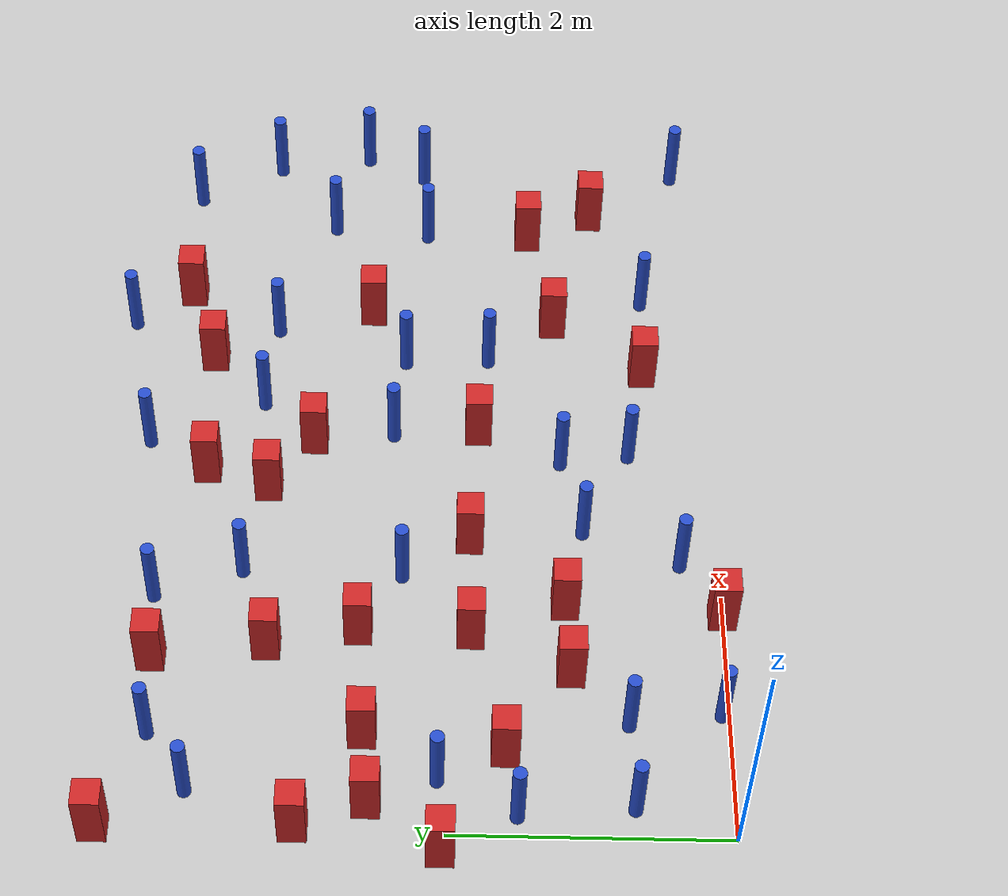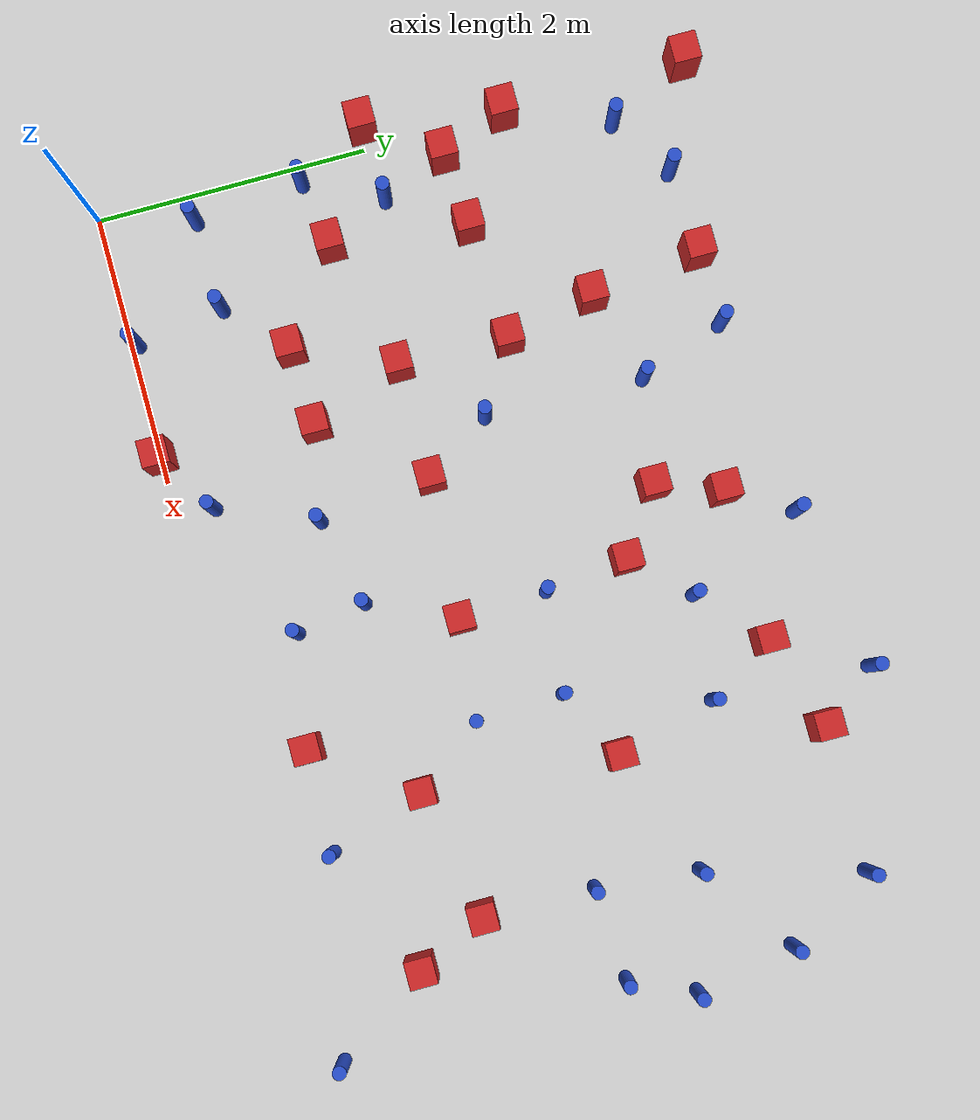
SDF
<sdf version="1.6">
 <model name="dense_72">
  <model name="square_post_obstacle2">
   <static>true</static>
   <pose>0.2190282874 2.5391222892 8.22691968438e-08 7.2212513382e-06 -7.54495500217e-07 2.29674213826e-05</pose>
   <link name="link">
    <pose>0 0 0.25 0 -0 0</pose>
    <inertial>
     <mass>100</mass>
     <inertia>
      <ixx>0.166667</ixx>
      <ixy>0</ixy>
      <ixz>0</ixz>
      <iyy>0.166667</iyy>
      <iyz>0</iyz>
      <izz>0.166667</izz>
     </inertia>
    </inertial>
    <collision name="collision"><geometry><box><size>.2 .2 .5</size></box></geometry></collision>
    <visual name="visual">
     <geometry><box><size>.2 .2 .5</size></box></geometry>
     <material>
      <script><name>Gazebo/Red</name><uri>file://media/materials/scripts/gazebo.material</uri></script>
     </material>
    </visual>
   </link>
  </model>
  <model name="pole_obstacle17">
   <static>true</static>
   <pose>0.307623092809 3.79545921827 2.88873142074e-08 -9.90536689663e-09 4.60219948993e-07 -1.20965994959e-07</pose>
   <link name="link">
    <pose>0 0 0.3 0 -0 0</pose>
    <inertial>
     <mass>1</mass>
     <inertia><ixx>0.145833</ixx><ixy>0</ixy><ixz>0</ixz><iyy>0.145833</iyy><iyz>0</iyz><izz>0.125</izz></inertia>
    </inertial>
    <collision name="collision">
     <geometry><cylinder><radius>0.05</radius><length>.6</length></cylinder></geometry>
    </collision>
    <visual name="visual">
     <geometry><cylinder><radius>0.05</radius><length>.6</length></cylinder></geometry>
     <material>
      <script><name>Gazebo/Blue</name><uri>file://media/materials/scripts/gazebo.material</uri></script>
     </material>
    </visual>
   </link>
  </model>
  <model name="pole_obstacle22">
   <static>true</static>
   <pose>3.21399484026 1.15496642094 2.88873142074e-08 -9.90536689395e-09 4.60219949e-07 -1.20965994953e-07</pose>
   <link name="link">
    <pose>0 0 0.3 0 -0 0</pose>
    <inertial>
     <mass>1</mass>
     <inertia><ixx>0.145833</ixx><ixy>0</ixy><ixz>0</ixz><iyy>0.145833</iyy><iyz>0</iyz><izz>0.125</izz></inertia>
    </inertial>
    <collision name="collision">
     <geometry><cylinder><radius>0.05</radius><length>.6</length></cylinder></geometry>
    </collision>
    <visual name="visual">
     <geometry><cylinder><radius>0.05</radius><length>.6</length></cylinder></geometry>
     <material>
      <script><name>Gazebo/Blue</name><uri>file://media/materials/scripts/gazebo.material</uri></script>
     </material>
    </visual>
   </link>
  </model>
  <model name="pole_obstacle23">
   <static>true</static>
   <pose>5.58787238519 2.20377139661 2.88873142074e-08 -9.90536690245e-09 4.6021994898e-07 -1.20965994966e-07</pose>
   <link name="link">
    <pose>0 0 0.3 0 -0 0</pose>
    <inertial>
     <mass>1</mass>
     <inertia><ixx>0.145833</ixx><ixy>0</ixy><ixz>0</ixz><iyy>0.145833</iyy><iyz>0</iyz><izz>0.125</izz></inertia>
    </inertial>
    <collision name="collision">
     <geometry><cylinder><radius>0.05</radius><length>.6</length></cylinder></geometry>
    </collision>
    <visual name="visual">
     <geometry><cylinder><radius>0.05</radius><length>.6</length></cylinder></geometry>
     <material>
      <script><name>Gazebo/Blue</name><uri>file://media/materials/scripts/gazebo.material</uri></script>
     </material>
    </visual>
   </link>
  </model>
  <model name="pole_obstacle26">
   <static>true</static>
   <pose>6.29894646236 0.176545857892 2.88873142074e-08 -9.90536689378e-09 4.60219949e-07 -1.20965994955e-07</pose>
   <link name="link">
    <pose>0 0 0.3 0 -0 0</pose>
    <inertial>
     <mass>1</mass>
     <inertia><ixx>0.145833</ixx><ixy>0</ixy><ixz>0</ixz><iyy>0.145833</iyy><iyz>0</iyz><izz>0.125</izz></inertia>
    </inertial>
    <collision name="collision">
     <geometry><cylinder><radius>0.05</radius><length>.6</length></cylinder></geometry>
    </collision>
    <visual name="visual">
     <geometry><cylinder><radius>0.05</radius><length>.6</length></cylinder></geometry>
     <material>
      <script><name>Gazebo/Blue</name><uri>file://media/materials/scripts/gazebo.material</uri></script>
     </material>
    </visual>
   </link>
  </model>
  <model name="pole_obstacle27">
   <static>true</static>
   <pose>5.97920845979 4.0949173007 2.88873142074e-08 -9.90536690842e-09 4.60219948965e-07 -1.20965994976e-07</pose>
   <link name="link">
    <pose>0 0 0.3 0 -0 0</pose>
    <inertial>
     <mass>1</mass>
     <inertia><ixx>0.145833</ixx><ixy>0</ixy><ixz>0</ixz><iyy>0.145833</iyy><iyz>0</iyz><izz>0.125</izz></inertia>
    </inertial>
    <collision name="collision">
     <geometry><cylinder><radius>0.05</radius><length>.6</length></cylinder></geometry>
    </collision>
    <visual name="visual">
     <geometry><cylinder><radius>0.05</radius><length>.6</length></cylinder></geometry>
     <material>
      <script><name>Gazebo/Blue</name><uri>file://media/materials/scripts/gazebo.material</uri></script>
     </material>
    </visual>
   </link>
  </model>
  <model name="square_post_obstacle29">
   <static>true</static>
   <pose>4.11304902808 0.503068344709 8.22691968438e-08 7.2212513382e-06 -7.54495500217e-07 2.29674213826e-05</pose>
   <link name="link">
    <pose>0 0 0.25 0 -0 0</pose>
    <inertial>
     <mass>100</mass>
     <inertia>
      <ixx>0.166667</ixx>
      <ixy>0</ixy>
      <ixz>0</ixz>
      <iyy>0.166667</iyy>
      <iyz>0</iyz>
      <izz>0.166667</izz>
     </inertia>
    </inertial>
    <collision name="collision"><geometry><box><size>.2 .2 .5</size></box></geometry></collision>
    <visual name="visual">
     <geometry><box><size>.2 .2 .5</size></box></geometry>
     <material>
      <script><name>Gazebo/Red</name><uri>file://media/materials/scripts/gazebo.material</uri></script>
     </material>
    </visual>
   </link>
  </model>
  <model name="pole_obstacle35">
   <static>true</static>
   <pose>6.47769904895 2.71118495779 2.88873142074e-08 -9.90536690245e-09 4.6021994898e-07 -1.20965994966e-07</pose>
   <link name="link">
    <pose>0 0 0.3 0 -0 0</pose>
    <inertial>
     <mass>1</mass>
     <inertia><ixx>0.145833</ixx><ixy>0</ixy><ixz>0</ixz><iyy>0.145833</iyy><iyz>0</iyz><izz>0.125</izz></inertia>
    </inertial>
    <collision name="collision">
     <geometry><cylinder><radius>0.05</radius><length>.6</length></cylinder></geometry>
    </collision>
    <visual name="visual">
     <geometry><cylinder><radius>0.05</radius><length>.6</length></cylinder></geometry>
     <material>
      <script><name>Gazebo/Blue</name><uri>file://media/materials/scripts/gazebo.material</uri></script>
     </material>
    </visual>
   </link>
  </model>
  <model name="pole_obstacle36">
   <static>true</static>
   <pose>2.14085963307 2.33548667248 2.88873142074e-08 -9.90536690232e-09 4.6021994898e-07 -1.20965994968e-07</pose>
   <link name="link">
    <pose>0 0 0.3 0 -0 0</pose>
    <inertial>
     <mass>1</mass>
     <inertia><ixx>0.145833</ixx><ixy>0</ixy><ixz>0</ixz><iyy>0.145833</iyy><iyz>0</iyz><izz>0.125</izz></inertia>
    </inertial>
    <collision name="collision">
     <geometry><cylinder><radius>0.05</radius><length>.6</length></cylinder></geometry>
    </collision>
    <visual name="visual">
     <geometry><cylinder><radius>0.05</radius><length>.6</length></cylinder></geometry>
     <material>
      <script><name>Gazebo/Blue</name><uri>file://media/materials/scripts/gazebo.material</uri></script>
     </material>
    </visual>
   </link>
  </model>
  <model name="square_post_obstacle33">
   <static>true</static>
   <pose>3.50157909778 1.78142558885 8.22691968438e-08 7.2212513382e-06 -7.54495500217e-07 2.29674213826e-05</pose>
   <link name="link">
    <pose>0 0 0.25 0 -0 0</pose>
    <inertial>
     <mass>100</mass>
     <inertia>
      <ixx>0.166667</ixx>
      <ixy>0</ixy>
      <ixz>0</ixz>
      <iyy>0.166667</iyy>
      <iyz>0</iyz>
      <izz>0.166667</izz>
     </inertia>
    </inertial>
    <collision name="collision"><geometry><box><size>.2 .2 .5</size></box></geometry></collision>
    <visual name="visual">
     <geometry><box><size>.2 .2 .5</size></box></geometry>
     <material>
      <script><name>Gazebo/Red</name><uri>file://media/materials/scripts/gazebo.material</uri></script>
     </material>
    </visual>
   </link>
  </model>
  <model name="pole_obstacle43">
   <static>true</static>
   <pose>0.763622266469 4.09649743446 2.88873142074e-08 -9.90536689661e-09 4.60219948993e-07 -1.20965994957e-07</pose>
   <link name="link">
    <pose>0 0 0.3 0 -0 0</pose>
    <inertial>
     <mass>1</mass>
     <inertia><ixx>0.145833</ixx><ixy>0</ixy><ixz>0</ixz><iyy>0.145833</iyy><iyz>0</iyz><izz>0.125</izz></inertia>
    </inertial>
    <collision name="collision">
     <geometry><cylinder><radius>0.05</radius><length>.6</length></cylinder></geometry>
    </collision>
    <visual name="visual">
     <geometry><cylinder><radius>0.05</radius><length>.6</length></cylinder></geometry>
     <material>
      <script><name>Gazebo/Blue</name><uri>file://media/materials/scripts/gazebo.material</uri></script>
     </material>
    </visual>
   </link>
  </model>
  <model name="pole_obstacle47">
   <static>true</static>
   <pose>3.29350040887 0.637676185694 2.88873142074e-08 -9.90536689285e-09 4.60219949002e-07 -1.20965994953e-07</pose>
   <link name="link">
    <pose>0 0 0.3 0 -0 0</pose>
    <inertial>
     <mass>1</mass>
     <inertia><ixx>0.145833</ixx><ixy>0</ixy><ixz>0</ixz><iyy>0.145833</iyy><iyz>0</iyz><izz>0.125</izz></inertia>
    </inertial>
    <collision name="collision">
     <geometry><cylinder><radius>0.05</radius><length>.6</length></cylinder></geometry>
    </collision>
    <visual name="visual">
     <geometry><cylinder><radius>0.05</radius><length>.6</length></cylinder></geometry>
     <material>
      <script><name>Gazebo/Blue</name><uri>file://media/materials/scripts/gazebo.material</uri></script>
     </material>
    </visual>
   </link>
  </model>
  <model name="square_post_obstacle40">
   <static>true</static>
   <pose>5.56325435731 1.38980676724 8.22691968438e-08 7.2212513382e-06 -7.54495500217e-07 2.29674213826e-05</pose>
   <link name="link">
    <pose>0 0 0.25 0 -0 0</pose>
    <inertial>
     <mass>100</mass>
     <inertia>
      <ixx>0.166667</ixx>
      <ixy>0</ixy>
      <ixz>0</ixz>
      <iyy>0.166667</iyy>
      <iyz>0</iyz>
      <izz>0.166667</izz>
     </inertia>
    </inertial>
    <collision name="collision"><geometry><box><size>.2 .2 .5</size></box></geometry></collision>
    <visual name="visual">
     <geometry><box><size>.2 .2 .5</size></box></geometry>
     <material>
      <script><name>Gazebo/Red</name><uri>file://media/materials/scripts/gazebo.material</uri></script>
     </material>
    </visual>
   </link>
  </model>
  <model name="square_post_obstacle49">
   <static>true</static>
   <pose>2.46596672662 1.84122549622 8.22691968438e-08 7.2212513382e-06 -7.54495500217e-07 2.29674213826e-05</pose>
   <link name="link">
    <pose>0 0 0.25 0 -0 0</pose>
    <inertial>
     <mass>100</mass>
     <inertia>
      <ixx>0.166667</ixx>
      <ixy>0</ixy>
      <ixz>0</ixz>
      <iyy>0.166667</iyy>
      <iyz>0</iyz>
      <izz>0.166667</izz>
     </inertia>
    </inertial>
    <collision name="collision"><geometry><box><size>.2 .2 .5</size></box></geometry></collision>
    <visual name="visual">
     <geometry><box><size>.2 .2 .5</size></box></geometry>
     <material>
      <script><name>Gazebo/Red</name><uri>file://media/materials/scripts/gazebo.material</uri></script>
     </material>
    </visual>
   </link>
  </model>
  <model name="pole_obstacle63">
   <static>true</static>
   <pose>0.216250071508 0.688848022435 2.88873142074e-08 -9.90536690021e-09 4.60219948985e-07 -1.20965994963e-07</pose>
   <link name="link">
    <pose>0 0 0.3 0 -0 0</pose>
    <inertial>
     <mass>1</mass>
     <inertia><ixx>0.145833</ixx><ixy>0</ixy><ixz>0</ixz><iyy>0.145833</iyy><iyz>0</iyz><izz>0.125</izz></inertia>
    </inertial>
    <collision name="collision">
     <geometry><cylinder><radius>0.05</radius><length>.6</length></cylinder></geometry>
    </collision>
    <visual name="visual">
     <geometry><cylinder><radius>0.05</radius><length>.6</length></cylinder></geometry>
     <material>
      <script><name>Gazebo/Blue</name><uri>file://media/materials/scripts/gazebo.material</uri></script>
     </material>
    </visual>
   </link>
  </model>
  <model name="square_post_obstacle50">
   <static>true</static>
   <pose>0.771809701009 2.58434858836 8.22691968438e-08 7.2212513382e-06 -7.54495500217e-07 2.29674213826e-05</pose>
   <link name="link">
    <pose>0 0 0.25 0 -0 0</pose>
    <inertial>
     <mass>100</mass>
     <inertia>
      <ixx>0.166667</ixx>
      <ixy>0</ixy>
      <ixz>0</ixz>
      <iyy>0.166667</iyy>
      <iyz>0</iyz>
      <izz>0.166667</izz>
     </inertia>
    </inertial>
    <collision name="collision"><geometry><box><size>.2 .2 .5</size></box></geometry></collision>
    <visual name="visual">
     <geometry><box><size>.2 .2 .5</size></box></geometry>
     <material>
      <script><name>Gazebo/Red</name><uri>file://media/materials/scripts/gazebo.material</uri></script>
     </material>
    </visual>
   </link>
  </model>
  <model name="square_post_obstacle56">
   <static>true</static>
   <pose>0.643373749082 1.58382273885 8.22691968438e-08 7.2212513382e-06 -7.54495500217e-07 2.29674213826e-05</pose>
   <link name="link">
    <pose>0 0 0.25 0 -0 0</pose>
    <inertial>
     <mass>100</mass>
     <inertia>
      <ixx>0.166667</ixx>
      <ixy>0</ixy>
      <ixz>0</ixz>
      <iyy>0.166667</iyy>
      <iyz>0</iyz>
      <izz>0.166667</izz>
     </inertia>
    </inertial>
    <collision name="collision"><geometry><box><size>.2 .2 .5</size></box></geometry></collision>
    <visual name="visual">
     <geometry><box><size>.2 .2 .5</size></box></geometry>
     <material>
      <script><name>Gazebo/Red</name><uri>file://media/materials/scripts/gazebo.material</uri></script>
     </material>
    </visual>
   </link>
  </model>
  <model name="pole_obstacle76">
   <static>true</static>
   <pose>2.16894916394 3.50908128852 2.88873142074e-08 -9.90536690232e-09 4.6021994898e-07 -1.20965994968e-07</pose>
   <link name="link">
    <pose>0 0 0.3 0 -0 0</pose>
    <inertial>
     <mass>1</mass>
     <inertia><ixx>0.145833</ixx><ixy>0</ixy><ixz>0</ixz><iyy>0.145833</iyy><iyz>0</iyz><izz>0.125</izz></inertia>
    </inertial>
    <collision name="collision">
     <geometry><cylinder><radius>0.05</radius><length>.6</length></cylinder></geometry>
    </collision>
    <visual name="visual">
     <geometry><cylinder><radius>0.05</radius><length>.6</length></cylinder></geometry>
     <material>
      <script><name>Gazebo/Blue</name><uri>file://media/materials/scripts/gazebo.material</uri></script>
     </material>
    </visual>
   </link>
  </model>
  <model name="square_post_obstacle75">
   <static>true</static>
   <pose>0.0272648362497 3.03281981452 8.22691968438e-08 7.2212513382e-06 -7.54495500217e-07 2.29674213826e-05</pose>
   <link name="link">
    <pose>0 0 0.25 0 -0 0</pose>
    <inertial>
     <mass>100</mass>
     <inertia>
      <ixx>0.166667</ixx>
      <ixy>0</ixy>
      <ixz>0</ixz>
      <iyy>0.166667</iyy>
      <iyz>0</iyz>
      <izz>0.166667</izz>
     </inertia>
    </inertial>
    <collision name="collision"><geometry><box><size>.2 .2 .5</size></box></geometry></collision>
    <visual name="visual">
     <geometry><box><size>.2 .2 .5</size></box></geometry>
     <material>
      <script><name>Gazebo/Red</name><uri>file://media/materials/scripts/gazebo.material</uri></script>
     </material>
    </visual>
   </link>
  </model>
  <model name="square_post_obstacle76">
   <static>true</static>
   <pose>4.72191383876 2.62196088454 8.22691968438e-08 7.2212513382e-06 -7.54495500217e-07 2.29674213826e-05</pose>
   <link name="link">
    <pose>0 0 0.25 0 -0 0</pose>
    <inertial>
     <mass>100</mass>
     <inertia>
      <ixx>0.166667</ixx>
      <ixy>0</ixy>
      <ixz>0</ixz>
      <iyy>0.166667</iyy>
      <iyz>0</iyz>
      <izz>0.166667</izz>
     </inertia>
    </inertial>
    <collision name="collision"><geometry><box><size>.2 .2 .5</size></box></geometry></collision>
    <visual name="visual">
     <geometry><box><size>.2 .2 .5</size></box></geometry>
     <material>
      <script><name>Gazebo/Red</name><uri>file://media/materials/scripts/gazebo.material</uri></script>
     </material>
    </visual>
   </link>
  </model>
  <model name="pole_obstacle89">
   <static>true</static>
   <pose>2.27295141347 0.289868012988 2.88873142074e-08 -9.90536689488e-09 4.60219948997e-07 -1.20965994956e-07</pose>
   <link name="link">
    <pose>0 0 0.3 0 -0 0</pose>
    <inertial>
     <mass>1</mass>
     <inertia><ixx>0.145833</ixx><ixy>0</ixy><ixz>0</ixz><iyy>0.145833</iyy><iyz>0</iyz><izz>0.125</izz></inertia>
    </inertial>
    <collision name="collision">
     <geometry><cylinder><radius>0.05</radius><length>.6</length></cylinder></geometry>
    </collision>
    <visual name="visual">
     <geometry><cylinder><radius>0.05</radius><length>.6</length></cylinder></geometry>
     <material>
      <script><name>Gazebo/Blue</name><uri>file://media/materials/scripts/gazebo.material</uri></script>
     </material>
    </visual>
   </link>
  </model>
  <model name="pole_obstacle91">
   <static>true</static>
   <pose>1.9350457874 4.14826656379 2.88873142074e-08 -9.90536689852e-09 4.60219948989e-07 -1.2096599496e-07</pose>
   <link name="link">
    <pose>0 0 0.3 0 -0 0</pose>
    <inertial>
     <mass>1</mass>
     <inertia><ixx>0.145833</ixx><ixy>0</ixy><ixz>0</ixz><iyy>0.145833</iyy><iyz>0</iyz><izz>0.125</izz></inertia>
    </inertial>
    <collision name="collision">
     <geometry><cylinder><radius>0.05</radius><length>.6</length></cylinder></geometry>
    </collision>
    <visual name="visual">
     <geometry><cylinder><radius>0.05</radius><length>.6</length></cylinder></geometry>
     <material>
      <script><name>Gazebo/Blue</name><uri>file://media/materials/scripts/gazebo.material</uri></script>
     </material>
    </visual>
   </link>
  </model>
  <model name="square_post_obstacle87">
   <static>true</static>
   <pose>4.90389879643 4.07535572147 8.22691968438e-08 7.22125133819e-06 -7.54495500217e-07 2.29674213826e-05</pose>
   <link name="link">
    <pose>0 0 0.25 0 -0 0</pose>
    <inertial>
     <mass>100</mass>
     <inertia>
      <ixx>0.166667</ixx>
      <ixy>0</ixy>
      <ixz>0</ixz>
      <iyy>0.166667</iyy>
      <iyz>0</iyz>
      <izz>0.166667</izz>
     </inertia>
    </inertial>
    <collision name="collision"><geometry><box><size>.2 .2 .5</size></box></geometry></collision>
    <visual name="visual">
     <geometry><box><size>.2 .2 .5</size></box></geometry>
     <material>
      <script><name>Gazebo/Red</name><uri>file://media/materials/scripts/gazebo.material</uri></script>
     </material>
    </visual>
   </link>
  </model>
  <model name="pole_obstacle95">
   <static>true</static>
   <pose>0.981422135399 0.0537355260717 2.88873142074e-08 -9.90536690032e-09 4.60219948985e-07 -1.20965994964e-07</pose>
   <link name="link">
    <pose>0 0 0.3 0 -0 0</pose>
    <inertial>
     <mass>1</mass>
     <inertia><ixx>0.145833</ixx><ixy>0</ixy><ixz>0</ixz><iyy>0.145833</iyy><iyz>0</iyz><izz>0.125</izz></inertia>
    </inertial>
    <collision name="collision">
     <geometry><cylinder><radius>0.05</radius><length>.6</length></cylinder></geometry>
    </collision>
    <visual name="visual">
     <geometry><cylinder><radius>0.05</radius><length>.6</length></cylinder></geometry>
     <material>
      <script><name>Gazebo/Blue</name><uri>file://media/materials/scripts/gazebo.material</uri></script>
     </material>
    </visual>
   </link>
  </model>
  <model name="pole_obstacle97">
   <static>true</static>
   <pose>3.38027347681 4.29982518309 2.88873142074e-08 -9.90536689859e-09 4.60219948989e-07 -1.20965994961e-07</pose>
   <link name="link">
    <pose>0 0 0.3 0 -0 0</pose>
    <inertial>
     <mass>1</mass>
     <inertia><ixx>0.145833</ixx><ixy>0</ixy><ixz>0</ixz><iyy>0.145833</iyy><iyz>0</iyz><izz>0.125</izz></inertia>
    </inertial>
    <collision name="collision">
     <geometry><cylinder><radius>0.05</radius><length>.6</length></cylinder></geometry>
    </collision>
    <visual name="visual">
     <geometry><cylinder><radius>0.05</radius><length>.6</length></cylinder></geometry>
     <material>
      <script><name>Gazebo/Blue</name><uri>file://media/materials/scripts/gazebo.material</uri></script>
     </material>
    </visual>
   </link>
  </model>
  <model name="pole_obstacle103">
   <static>true</static>
   <pose>3.76972896377 3.43940672014 2.88873142074e-08 -9.90536690232e-09 4.6021994898e-07 -1.20965994968e-07</pose>
   <link name="link">
    <pose>0 0 0.3 0 -0 0</pose>
    <inertial>
     <mass>1</mass>
     <inertia><ixx>0.145833</ixx><ixy>0</ixy><ixz>0</ixz><iyy>0.145833</iyy><iyz>0</iyz><izz>0.125</izz></inertia>
    </inertial>
    <collision name="collision">
     <geometry><cylinder><radius>0.05</radius><length>.6</length></cylinder></geometry>
    </collision>
    <visual name="visual">
     <geometry><cylinder><radius>0.05</radius><length>.6</length></cylinder></geometry>
     <material>
      <script><name>Gazebo/Blue</name><uri>file://media/materials/scripts/gazebo.material</uri></script>
     </material>
    </visual>
   </link>
  </model>
  <model name="square_post_obstacle98">
   <static>true</static>
   <pose>3.09831291459 3.83531556448 8.22691968438e-08 7.2212513382e-06 -7.54495500217e-07 2.29674213826e-05</pose>
   <link name="link">
    <pose>0 0 0.25 0 -0 0</pose>
    <inertial>
     <mass>100</mass>
     <inertia>
      <ixx>0.166667</ixx>
      <ixy>0</ixy>
      <ixz>0</ixz>
      <iyy>0.166667</iyy>
      <iyz>0</iyz>
      <izz>0.166667</izz>
     </inertia>
    </inertial>
    <collision name="collision"><geometry><box><size>.2 .2 .5</size></box></geometry></collision>
    <visual name="visual">
     <geometry><box><size>.2 .2 .5</size></box></geometry>
     <material>
      <script><name>Gazebo/Red</name><uri>file://media/materials/scripts/gazebo.material</uri></script>
     </material>
    </visual>
   </link>
  </model>
  <model name="pole_obstacle111">
   <static>true</static>
   <pose>3.47104968568 2.42869223765 2.88873142074e-08 -9.90536690232e-09 4.6021994898e-07 -1.20965994968e-07</pose>
   <link name="link">
    <pose>0 0 0.3 0 -0 0</pose>
    <inertial>
     <mass>1</mass>
     <inertia><ixx>0.145833</ixx><ixy>0</ixy><ixz>0</ixz><iyy>0.145833</iyy><iyz>0</iyz><izz>0.125</izz></inertia>
    </inertial>
    <collision name="collision">
     <geometry><cylinder><radius>0.05</radius><length>.6</length></cylinder></geometry>
    </collision>
    <visual name="visual">
     <geometry><cylinder><radius>0.05</radius><length>.6</length></cylinder></geometry>
     <material>
      <script><name>Gazebo/Blue</name><uri>file://media/materials/scripts/gazebo.material</uri></script>
     </material>
    </visual>
   </link>
  </model>
  <model name="square_post_obstacle106">
   <static>true</static>
   <pose>1.8173069041 0.00669972680373 8.22691968438e-08 7.2212513382e-06 -7.54495500217e-07 2.29674213826e-05</pose>
   <link name="link">
    <pose>0 0 0.25 0 -0 0</pose>
    <inertial>
     <mass>100</mass>
     <inertia>
      <ixx>0.166667</ixx>
      <ixy>0</ixy>
      <ixz>0</ixz>
      <iyy>0.166667</iyy>
      <iyz>0</iyz>
      <izz>0.166667</izz>
     </inertia>
    </inertial>
    <collision name="collision"><geometry><box><size>.2 .2 .5</size></box></geometry></collision>
    <visual name="visual">
     <geometry><box><size>.2 .2 .5</size></box></geometry>
     <material>
      <script><name>Gazebo/Red</name><uri>file://media/materials/scripts/gazebo.material</uri></script>
     </material>
    </visual>
   </link>
  </model>
  <model name="square_post_obstacle107">
   <static>true</static>
   <pose>1.62032424829 1.83051970885 8.22691968438e-08 7.2212513382e-06 -7.54495500217e-07 2.29674213826e-05</pose>
   <link name="link">
    <pose>0 0 0.25 0 -0 0</pose>
    <inertial>
     <mass>100</mass>
     <inertia>
      <ixx>0.166667</ixx>
      <ixy>0</ixy>
      <ixz>0</ixz>
      <iyy>0.166667</iyy>
      <iyz>0</iyz>
      <izz>0.166667</izz>
     </inertia>
    </inertial>
    <collision name="collision"><geometry><box><size>.2 .2 .5</size></box></geometry></collision>
    <visual name="visual">
     <geometry><box><size>.2 .2 .5</size></box></geometry>
     <material>
      <script><name>Gazebo/Red</name><uri>file://media/materials/scripts/gazebo.material</uri></script>
     </material>
    </visual>
   </link>
  </model>
  <model name="square_post_obstacle110">
   <static>true</static>
   <pose>1.49745537469 3.29779844383 8.22691968438e-08 7.2212513382e-06 -7.54495500217e-07 2.29674213826e-05</pose>
   <link name="link">
    <pose>0 0 0.25 0 -0 0</pose>
    <inertial>
     <mass>100</mass>
     <inertia>
      <ixx>0.166667</ixx>
      <ixy>0</ixy>
      <ixz>0</ixz>
      <iyy>0.166667</iyy>
      <iyz>0</iyz>
      <izz>0.166667</izz>
     </inertia>
    </inertial>
    <collision name="collision"><geometry><box><size>.2 .2 .5</size></box></geometry></collision>
    <visual name="visual">
     <geometry><box><size>.2 .2 .5</size></box></geometry>
     <material>
      <script><name>Gazebo/Red</name><uri>file://media/materials/scripts/gazebo.material</uri></script>
     </material>
    </visual>
   </link>
  </model>
  <model name="square_post_obstacle113">
   <static>true</static>
   <pose>1.30559700078 1.1143601646 8.22691968438e-08 7.2212513382e-06 -7.54495500217e-07 2.29674213826e-05</pose>
   <link name="link">
    <pose>0 0 0.25 0 -0 0</pose>
    <inertial>
     <mass>100</mass>
     <inertia>
      <ixx>0.166667</ixx>
      <ixy>0</ixy>
      <ixz>0</ixz>
      <iyy>0.166667</iyy>
      <iyz>0</iyz>
      <izz>0.166667</izz>
     </inertia>
    </inertial>
    <collision name="collision"><geometry><box><size>.2 .2 .5</size></box></geometry></collision>
    <visual name="visual">
     <geometry><box><size>.2 .2 .5</size></box></geometry>
     <material>
      <script><name>Gazebo/Red</name><uri>file://media/materials/scripts/gazebo.material</uri></script>
     </material>
    </visual>
   </link>
  </model>
  <model name="square_post_obstacle118">
   <static>true</static>
   <pose>4.21424643116 3.85490608512 8.22691968438e-08 7.2212513382e-06 -7.54495500217e-07 2.29674213826e-05</pose>
   <link name="link">
    <pose>0 0 0.25 0 -0 0</pose>
    <inertial>
     <mass>100</mass>
     <inertia>
      <ixx>0.166667</ixx>
      <ixy>0</ixy>
      <ixz>0</ixz>
      <iyy>0.166667</iyy>
      <iyz>0</iyz>
      <izz>0.166667</izz>
     </inertia>
    </inertial>
    <collision name="collision"><geometry><box><size>.2 .2 .5</size></box></geometry></collision>
    <visual name="visual">
     <geometry><box><size>.2 .2 .5</size></box></geometry>
     <material>
      <script><name>Gazebo/Red</name><uri>file://media/materials/scripts/gazebo.material</uri></script>
     </material>
    </visual>
   </link>
  </model>
  <model name="pole_obstacle120">
   <static>true</static>
   <pose>6.34349754965 3.44615063653 2.88873142074e-08 -9.90536690245e-09 4.6021994898e-07 -1.20965994966e-07</pose>
   <link name="link">
    <pose>0 0 0.3 0 -0 0</pose>
    <inertial>
     <mass>1</mass>
     <inertia><ixx>0.145833</ixx><ixy>0</ixy><ixz>0</ixz><iyy>0.145833</iyy><iyz>0</iyz><izz>0.125</izz></inertia>
    </inertial>
    <collision name="collision">
     <geometry><cylinder><radius>0.05</radius><length>.6</length></cylinder></geometry>
    </collision>
    <visual name="visual">
     <geometry><cylinder><radius>0.05</radius><length>.6</length></cylinder></geometry>
     <material>
      <script><name>Gazebo/Blue</name><uri>file://media/materials/scripts/gazebo.material</uri></script>
     </material>
    </visual>
   </link>
  </model>
  <model name="pole_obstacle121">
   <static>true</static>
   <pose>0.888506602412 0.709978778493 2.88873142074e-08 -9.90536689967e-09 4.60219948986e-07 -1.20965994963e-07</pose>
   <link name="link">
    <pose>0 0 0.3 0 -0 0</pose>
    <inertial>
     <mass>1</mass>
     <inertia><ixx>0.145833</ixx><ixy>0</ixy><ixz>0</ixz><iyy>0.145833</iyy><iyz>0</iyz><izz>0.125</izz></inertia>
    </inertial>
    <collision name="collision">
     <geometry><cylinder><radius>0.05</radius><length>.6</length></cylinder></geometry>
    </collision>
    <visual name="visual">
     <geometry><cylinder><radius>0.05</radius><length>.6</length></cylinder></geometry>
     <material>
      <script><name>Gazebo/Blue</name><uri>file://media/materials/scripts/gazebo.material</uri></script>
     </material>
    </visual>
   </link>
  </model>
  <model name="square_post_obstacle121">
   <static>true</static>
   <pose>0.0058337687307 4.39274328257 8.22691968438e-08 7.2212513382e-06 -7.54495500217e-07 2.29674213826e-05</pose>
   <link name="link">
    <pose>0 0 0.25 0 -0 0</pose>
    <inertial>
     <mass>100</mass>
     <inertia>
      <ixx>0.166667</ixx>
      <ixy>0</ixy>
      <ixz>0</ixz>
      <iyy>0.166667</iyy>
      <iyz>0</iyz>
      <izz>0.166667</izz>
     </inertia>
    </inertial>
    <collision name="collision"><geometry><box><size>.2 .2 .5</size></box></geometry></collision>
    <visual name="visual">
     <geometry><box><size>.2 .2 .5</size></box></geometry>
     <material>
      <script><name>Gazebo/Red</name><uri>file://media/materials/scripts/gazebo.material</uri></script>
     </material>
    </visual>
   </link>
  </model>
  <model name="pole_obstacle129">
   <static>true</static>
   <pose>4.20835709271 2.3515070209 2.88873142074e-08 -9.90536690245e-09 4.6021994898e-07 -1.20965994966e-07</pose>
   <link name="link">
    <pose>0 0 0.3 0 -0 0</pose>
    <inertial>
     <mass>1</mass>
     <inertia><ixx>0.145833</ixx><ixy>0</ixy><ixz>0</ixz><iyy>0.145833</iyy><iyz>0</iyz><izz>0.125</izz></inertia>
    </inertial>
    <collision name="collision">
     <geometry><cylinder><radius>0.05</radius><length>.6</length></cylinder></geometry>
    </collision>
    <visual name="visual">
     <geometry><cylinder><radius>0.05</radius><length>.6</length></cylinder></geometry>
     <material>
      <script><name>Gazebo/Blue</name><uri>file://media/materials/scripts/gazebo.material</uri></script>
     </material>
    </visual>
   </link>
  </model>
  <model name="square_post_obstacle130">
   <static>true</static>
   <pose>-0.144939360073 2.02659496928 8.22691968438e-08 7.2212513382e-06 -7.54495500217e-07 2.29674213826e-05</pose>
   <link name="link">
    <pose>0 0 0.25 0 -0 0</pose>
    <inertial>
     <mass>100</mass>
     <inertia>
      <ixx>0.166667</ixx>
      <ixy>0</ixy>
      <ixz>0</ixz>
      <iyy>0.166667</iyy>
      <iyz>0</iyz>
      <izz>0.166667</izz>
     </inertia>
    </inertial>
    <collision name="collision"><geometry><box><size>.2 .2 .5</size></box></geometry></collision>
    <visual name="visual">
     <geometry><box><size>.2 .2 .5</size></box></geometry>
     <material>
      <script><name>Gazebo/Red</name><uri>file://media/materials/scripts/gazebo.material</uri></script>
     </material>
    </visual>
   </link>
  </model>
  <model name="pole_obstacle139">
   <static>true</static>
   <pose>2.56201605528 1.00024877111 2.88873142074e-08 -9.90536692432e-09 4.60219948928e-07 -1.2096599499e-07</pose>
   <link name="link">
    <pose>0 0 0.3 0 -0 0</pose>
    <inertial>
     <mass>1</mass>
     <inertia><ixx>0.145833</ixx><ixy>0</ixy><ixz>0</ixz><iyy>0.145833</iyy><iyz>0</iyz><izz>0.125</izz></inertia>
    </inertial>
    <collision name="collision">
     <geometry><cylinder><radius>0.05</radius><length>.6</length></cylinder></geometry>
    </collision>
    <visual name="visual">
     <geometry><cylinder><radius>0.05</radius><length>.6</length></cylinder></geometry>
     <material>
      <script><name>Gazebo/Blue</name><uri>file://media/materials/scripts/gazebo.material</uri></script>
     </material>
    </visual>
   </link>
  </model>
  <model name="pole_obstacle145">
   <static>true</static>
   <pose>4.23535641297 1.7058380939 2.88873142074e-08 -9.90536689445e-09 4.60219948999e-07 -1.20965994956e-07</pose>
   <link name="link">
    <pose>0 0 0.3 0 -0 0</pose>
    <inertial>
     <mass>1</mass>
     <inertia><ixx>0.145833</ixx><ixy>0</ixy><ixz>0</ixz><iyy>0.145833</iyy><iyz>0</iyz><izz>0.125</izz></inertia>
    </inertial>
    <collision name="collision">
     <geometry><cylinder><radius>0.05</radius><length>.6</length></cylinder></geometry>
    </collision>
    <visual name="visual">
     <geometry><cylinder><radius>0.05</radius><length>.6</length></cylinder></geometry>
     <material>
      <script><name>Gazebo/Blue</name><uri>file://media/materials/scripts/gazebo.material</uri></script>
     </material>
    </visual>
   </link>
  </model>
  <model name="pole_obstacle146">
   <static>true</static>
   <pose>4.52870947607 3.36757696967 2.88873142074e-08 -9.90536690245e-09 4.6021994898e-07 -1.20965994966e-07</pose>
   <link name="link">
    <pose>0 0 0.3 0 -0 0</pose>
    <inertial>
     <mass>1</mass>
     <inertia><ixx>0.145833</ixx><ixy>0</ixy><ixz>0</ixz><iyy>0.145833</iyy><iyz>0</iyz><izz>0.125</izz></inertia>
    </inertial>
    <collision name="collision">
     <geometry><cylinder><radius>0.05</radius><length>.6</length></cylinder></geometry>
    </collision>
    <visual name="visual">
     <geometry><cylinder><radius>0.05</radius><length>.6</length></cylinder></geometry>
     <material>
      <script><name>Gazebo/Blue</name><uri>file://media/materials/scripts/gazebo.material</uri></script>
     </material>
    </visual>
   </link>
  </model>
  <model name="pole_obstacle150">
   <static>true</static>
   <pose>0.418255800796 2.05549087887 2.88873142074e-08 -9.90536689663e-09 4.60219948993e-07 -1.20965994959e-07</pose>
   <link name="link">
    <pose>0 0 0.3 0 -0 0</pose>
    <inertial>
     <mass>1</mass>
     <inertia><ixx>0.145833</ixx><ixy>0</ixy><ixz>0</ixz><iyy>0.145833</iyy><iyz>0</iyz><izz>0.125</izz></inertia>
    </inertial>
    <collision name="collision">
     <geometry><cylinder><radius>0.05</radius><length>.6</length></cylinder></geometry>
    </collision>
    <visual name="visual">
     <geometry><cylinder><radius>0.05</radius><length>.6</length></cylinder></geometry>
     <material>
      <script><name>Gazebo/Blue</name><uri>file://media/materials/scripts/gazebo.material</uri></script>
     </material>
    </visual>
   </link>
  </model>
  <model name="pole_obstacle153">
   <static>true</static>
   <pose>4.86592372651 0.483757706199 2.88873142074e-08 -9.90536689483e-09 4.60219948998e-07 -1.20965994956e-07</pose>
   <link name="link">
    <pose>0 0 0.3 0 -0 0</pose>
    <inertial>
     <mass>1</mass>
     <inertia><ixx>0.145833</ixx><ixy>0</ixy><ixz>0</ixz><iyy>0.145833</iyy><iyz>0</iyz><izz>0.125</izz></inertia>
    </inertial>
    <collision name="collision">
     <geometry><cylinder><radius>0.05</radius><length>.6</length></cylinder></geometry>
    </collision>
    <visual name="visual">
     <geometry><cylinder><radius>0.05</radius><length>.6</length></cylinder></geometry>
     <material>
      <script><name>Gazebo/Blue</name><uri>file://media/materials/scripts/gazebo.material</uri></script>
     </material>
    </visual>
   </link>
  </model>
  <model name="square_post_obstacle155">
   <static>true</static>
   <pose>1.88683964864 1.14535329216 8.22691968438e-08 7.2212513382e-06 -7.54495500217e-07 2.29674213826e-05</pose>
   <link name="link">
    <pose>0 0 0.25 0 -0 0</pose>
    <inertial>
     <mass>100</mass>
     <inertia>
      <ixx>0.166667</ixx>
      <ixy>0</ixy>
      <ixz>0</ixz>
      <iyy>0.166667</iyy>
      <iyz>0</iyz>
      <izz>0.166667</izz>
     </inertia>
    </inertial>
    <collision name="collision"><geometry><box><size>.2 .2 .5</size></box></geometry></collision>
    <visual name="visual">
     <geometry><box><size>.2 .2 .5</size></box></geometry>
     <material>
      <script><name>Gazebo/Red</name><uri>file://media/materials/scripts/gazebo.material</uri></script>
     </material>
    </visual>
   </link>
  </model>
  <model name="pole_obstacle167">
   <static>true</static>
   <pose>6.26315812092 2.24867076121 2.88873142074e-08 -9.90536690245e-09 4.6021994898e-07 -1.20965994966e-07</pose>
   <link name="link">
    <pose>0 0 0.3 0 -0 0</pose>
    <inertial>
     <mass>1</mass>
     <inertia><ixx>0.145833</ixx><ixy>0</ixy><ixz>0</ixz><iyy>0.145833</iyy><iyz>0</iyz><izz>0.125</izz></inertia>
    </inertial>
    <collision name="collision">
     <geometry><cylinder><radius>0.05</radius><length>.6</length></cylinder></geometry>
    </collision>
    <visual name="visual">
     <geometry><cylinder><radius>0.05</radius><length>.6</length></cylinder></geometry>
     <material>
      <script><name>Gazebo/Blue</name><uri>file://media/materials/scripts/gazebo.material</uri></script>
     </material>
    </visual>
   </link>
  </model>
  <model name="square_post_obstacle179">
   <static>true</static>
   <pose>3.39604145987 3.03493028181 8.22691968438e-08 7.2212513382e-06 -7.54495500217e-07 2.29674213826e-05</pose>
   <link name="link">
    <pose>0 0 0.25 0 -0 0</pose>
    <inertial>
     <mass>100</mass>
     <inertia>
      <ixx>0.166667</ixx>
      <ixy>0</ixy>
      <ixz>0</ixz>
      <iyy>0.166667</iyy>
      <iyz>0</iyz>
      <izz>0.166667</izz>
     </inertia>
    </inertial>
    <collision name="collision"><geometry><box><size>.2 .2 .5</size></box></geometry></collision>
    <visual name="visual">
     <geometry><box><size>.2 .2 .5</size></box></geometry>
     <material>
      <script><name>Gazebo/Red</name><uri>file://media/materials/scripts/gazebo.material</uri></script>
     </material>
    </visual>
   </link>
  </model>
  <model name="pole_obstacle181">
   <static>true</static>
   <pose>0.145898204955 1.50113796288 2.88873142074e-08 -9.90536689569e-09 4.60219948996e-07 -1.20965994956e-07</pose>
   <link name="link">
    <pose>0 0 0.3 0 -0 0</pose>
    <inertial>
     <mass>1</mass>
     <inertia><ixx>0.145833</ixx><ixy>0</ixy><ixz>0</ixz><iyy>0.145833</iyy><iyz>0</iyz><izz>0.125</izz></inertia>
    </inertial>
    <collision name="collision">
     <geometry><cylinder><radius>0.05</radius><length>.6</length></cylinder></geometry>
    </collision>
    <visual name="visual">
     <geometry><cylinder><radius>0.05</radius><length>.6</length></cylinder></geometry>
     <material>
      <script><name>Gazebo/Blue</name><uri>file://media/materials/scripts/gazebo.material</uri></script>
     </material>
    </visual>
   </link>
  </model>
  <model name="pole_obstacle183">
   <static>true</static>
   <pose>5.66206864946 2.95802538333 2.88873142074e-08 -9.90536690245e-09 4.6021994898e-07 -1.20965994966e-07</pose>
   <link name="link">
    <pose>0 0 0.3 0 -0 0</pose>
    <inertial>
     <mass>1</mass>
     <inertia><ixx>0.145833</ixx><ixy>0</ixy><ixz>0</ixz><iyy>0.145833</iyy><iyz>0</iyz><izz>0.125</izz></inertia>
    </inertial>
    <collision name="collision">
     <geometry><cylinder><radius>0.05</radius><length>.6</length></cylinder></geometry>
    </collision>
    <visual name="visual">
     <geometry><cylinder><radius>0.05</radius><length>.6</length></cylinder></geometry>
     <material>
      <script><name>Gazebo/Blue</name><uri>file://media/materials/scripts/gazebo.material</uri></script>
     </material>
    </visual>
   </link>
  </model>
  <model name="square_post_obstacle184">
   <static>true</static>
   <pose>1.64008756146 2.64107913585 8.22691968438e-08 7.2212513382e-06 -7.54495500217e-07 2.29674213826e-05</pose>
   <link name="link">
    <pose>0 0 0.25 0 -0 0</pose>
    <inertial>
     <mass>100</mass>
     <inertia>
      <ixx>0.166667</ixx>
      <ixy>0</ixy>
      <ixz>0</ixz>
      <iyy>0.166667</iyy>
      <iyz>0</iyz>
      <izz>0.166667</izz>
     </inertia>
    </inertial>
    <collision name="collision"><geometry><box><size>.2 .2 .5</size></box></geometry></collision>
    <visual name="visual">
     <geometry><box><size>.2 .2 .5</size></box></geometry>
     <material>
      <script><name>Gazebo/Red</name><uri>file://media/materials/scripts/gazebo.material</uri></script>
     </material>
    </visual>
   </link>
  </model>
  <model name="square_post_obstacle188">
   <static>true</static>
   <pose>1.38954900626 4.12025621831 8.22691968438e-08 7.2212513382e-06 -7.54495500217e-07 2.29674213826e-05</pose>
   <link name="link">
    <pose>0 0 0.25 0 -0 0</pose>
    <inertial>
     <mass>100</mass>
     <inertia>
      <ixx>0.166667</ixx>
      <ixy>0</ixy>
      <ixz>0</ixz>
      <iyy>0.166667</iyy>
      <iyz>0</iyz>
      <izz>0.166667</izz>
     </inertia>
    </inertial>
    <collision name="collision"><geometry><box><size>.2 .2 .5</size></box></geometry></collision>
    <visual name="visual">
     <geometry><box><size>.2 .2 .5</size></box></geometry>
     <material>
      <script><name>Gazebo/Red</name><uri>file://media/materials/scripts/gazebo.material</uri></script>
     </material>
    </visual>
   </link>
  </model>
  <model name="square_post_obstacle190">
   <static>true</static>
   <pose>2.9342111018 3.36138191709 8.22691968438e-08 7.2212513382e-06 -7.54495500217e-07 2.29674213826e-05</pose>
   <link name="link">
    <pose>0 0 0.25 0 -0 0</pose>
    <inertial>
     <mass>100</mass>
     <inertia>
      <ixx>0.166667</ixx>
      <ixy>0</ixy>
      <ixz>0</ixz>
      <iyy>0.166667</iyy>
      <iyz>0</iyz>
      <izz>0.166667</izz>
     </inertia>
    </inertial>
    <collision name="collision"><geometry><box><size>.2 .2 .5</size></box></geometry></collision>
    <visual name="visual">
     <geometry><box><size>.2 .2 .5</size></box></geometry>
     <material>
      <script><name>Gazebo/Red</name><uri>file://media/materials/scripts/gazebo.material</uri></script>
     </material>
    </visual>
   </link>
  </model>
  <model name="pole_obstacle191">
   <static>true</static>
   <pose>4.58893908459 4.51831668577 2.88873142074e-08 -9.90536690842e-09 4.60219948965e-07 -1.20965994976e-07</pose>
   <link name="link">
    <pose>0 0 0.3 0 -0 0</pose>
    <inertial>
     <mass>1</mass>
     <inertia><ixx>0.145833</ixx><ixy>0</ixy><ixz>0</ixz><iyy>0.145833</iyy><iyz>0</iyz><izz>0.125</izz></inertia>
    </inertial>
    <collision name="collision">
     <geometry><cylinder><radius>0.05</radius><length>.6</length></cylinder></geometry>
    </collision>
    <visual name="visual">
     <geometry><cylinder><radius>0.05</radius><length>.6</length></cylinder></geometry>
     <material>
      <script><name>Gazebo/Blue</name><uri>file://media/materials/scripts/gazebo.material</uri></script>
     </material>
    </visual>
   </link>
  </model>
  <model name="square_post_obstacle207">
   <static>true</static>
   <pose>4.6136832823 1.19762485188 8.22691968438e-08 7.2212513382e-06 -7.54495500217e-07 2.29674213826e-05</pose>
   <link name="link">
    <pose>0 0 0.25 0 -0 0</pose>
    <inertial>
     <mass>100</mass>
     <inertia>
      <ixx>0.166667</ixx>
      <ixy>0</ixy>
      <ixz>0</ixz>
      <iyy>0.166667</iyy>
      <iyz>0</iyz>
      <izz>0.166667</izz>
     </inertia>
    </inertial>
    <collision name="collision"><geometry><box><size>.2 .2 .5</size></box></geometry></collision>
    <visual name="visual">
     <geometry><box><size>.2 .2 .5</size></box></geometry>
     <material>
      <script><name>Gazebo/Red</name><uri>file://media/materials/scripts/gazebo.material</uri></script>
     </material>
    </visual>
   </link>
  </model>
  <model name="square_post_obstacle217">
   <static>true</static>
   <pose>5.80533217172 0.880886938038 8.22691968438e-08 7.2212513382e-06 -7.54495500217e-07 2.29674213826e-05</pose>
   <link name="link">
    <pose>0 0 0.25 0 -0 0</pose>
    <inertial>
     <mass>100</mass>
     <inertia>
      <ixx>0.166667</ixx>
      <ixy>0</ixy>
      <ixz>0</ixz>
      <iyy>0.166667</iyy>
      <iyz>0</iyz>
      <izz>0.166667</izz>
     </inertia>
    </inertial>
    <collision name="collision"><geometry><box><size>.2 .2 .5</size></box></geometry></collision>
    <visual name="visual">
     <geometry><box><size>.2 .2 .5</size></box></geometry>
     <material>
      <script><name>Gazebo/Red</name><uri>file://media/materials/scripts/gazebo.material</uri></script>
     </material>
    </visual>
   </link>
  </model>
 </model>
</sdf>
